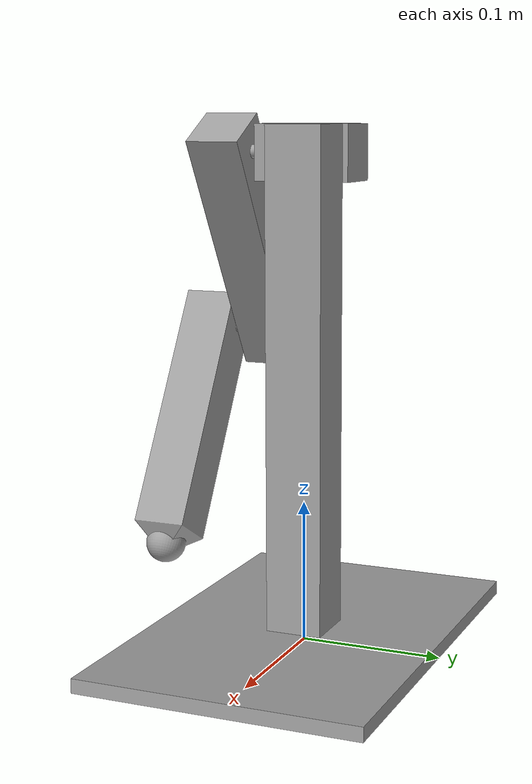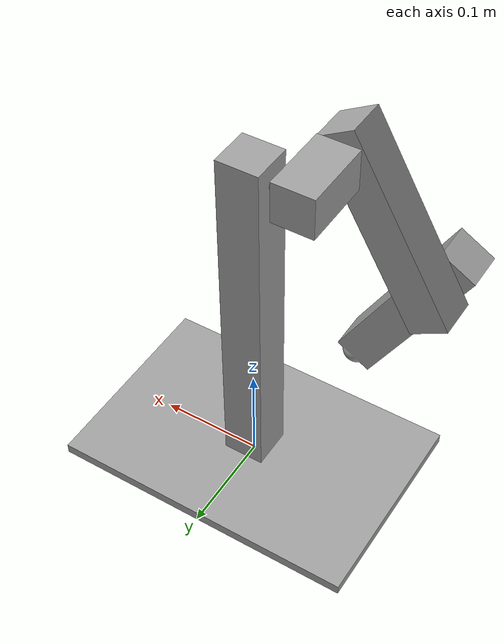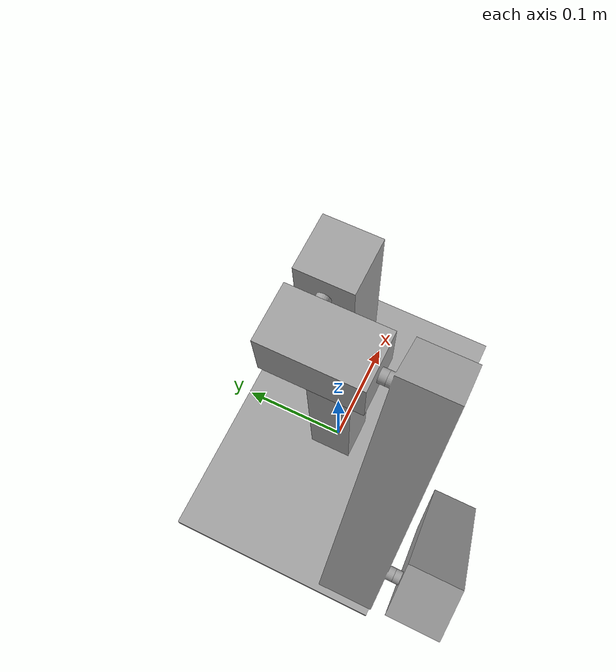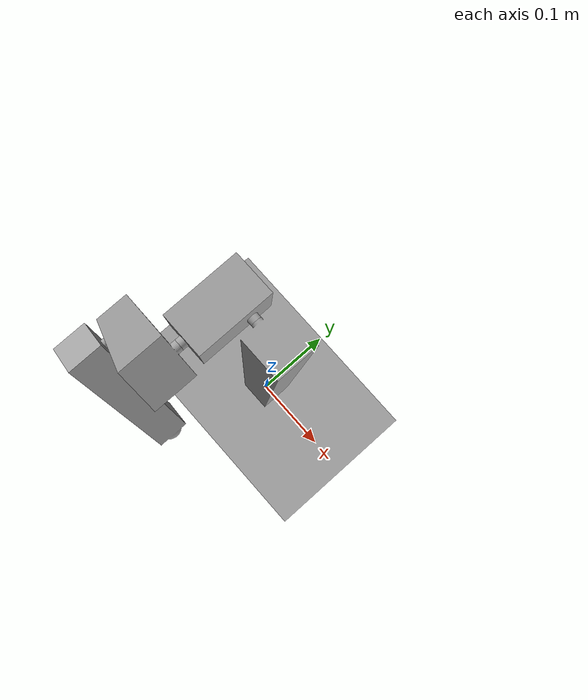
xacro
<?xml version="1.0" ?>
<robot name="leg" xmlns:xacro="http://www.ros.org/wiki/xacro">

<xacro:include filename="$(find leg_description)/urdf/materials.xacro" />
<xacro:include filename="$(find leg_description)/urdf/leg.trans" />
<xacro:include filename="$(find leg_description)/urdf/leg_ros2_control.xacro" />
<xacro:include filename="$(find leg_description)/urdf/leg_gazebo.xacro" />

<link name="world"/>

<link name="base_link">
  <inertial>
    <origin xyz="-7.614430309011421e-06 -1.5675636402963864e-16 0.09198051467597423" rpy="0 0 0"/>
    <mass value="9.109082687791332"/>
    <inertia ixx="0.135062" iyy="0.154688" izz="0.052199" ixy="-0.0" iyz="0.0" ixz="1.7e-05"/>
  </inertial>
  <visual>
    <origin xyz="0 0 0" rpy="0 0 0"/>
    <geometry>
      <mesh filename="package://leg_description/meshes/base_link.stl" scale="0.001 0.001 0.001"/>
    </geometry>
    <material name="steel_satin"/>
  </visual>
</link>

<joint name="virtual_joint" type="fixed">
  <parent link="world"/>
  <child link="base_link"/>
  <origin xyz="0 0 0" rpy="0 0 0"/>
  <axis xyz="0 0 0"/>
</joint>

<link name="link_1">
  <inertial>
    <origin xyz="-0.024921658924984068 -0.015078341075019548 -1.887379141862766e-15" rpy="0 0 0"/>
    <mass value="0.8853653755826697"/>
    <inertia ixx="0.000481" iyy="0.000236" izz="0.000483" ixy="-1e-06" iyz="-0.0" ixz="0.0"/>
  </inertial>
  <visual>
    <origin xyz="0.025 -0.0 -0.34" rpy="0 0 0"/>
    <geometry>
      <mesh filename="package://leg_description/meshes/link_1.stl" scale="0.001 0.001 0.001"/>
    </geometry>
    <material name="steel_satin"/>
  </visual>
  <collision>
    <origin xyz="0.025 -0.0 -0.34" rpy="0 0 0"/>
    <geometry>
      <mesh filename="package://leg_description/meshes/link_1.stl" scale="0.001 0.001 0.001"/>
    </geometry>
  </collision>
</link>

<link name="link_2">
  <inertial>
    <origin xyz="-0.039999999999999855 -0.025000000000000126 -0.06928203230275565" rpy="0 0 0"/>
    <mass value="2.51816537558267"/>
    <inertia ixx="0.006731" iyy="0.008748" izz="0.002693" ixy="-6e-06" iyz="-1e-05" ixz="-0.003498"/>
  </inertial>
  <visual>
    <origin xyz="0.05 0.055 -0.34" rpy="0 0 0"/>
    <geometry>
      <mesh filename="package://leg_description/meshes/link_2.stl" scale="0.001 0.001 0.001"/>
    </geometry>
    <material name="steel_satin"/>
  </visual>
  <collision>
    <origin xyz="0.05 0.055 -0.34" rpy="0 0 0"/>
    <geometry>
      <mesh filename="package://leg_description/meshes/link_2.stl" scale="0.001 0.001 0.001"/>
    </geometry>
  </collision>
</link>

<link name="link_3">
  <inertial>
    <origin xyz="0.040200358733573444 -0.024972506152453208 -0.06962912841455629" rpy="0 0 0"/>
    <mass value="2.5227635086829263"/>
    <inertia ixx="0.006838" iyy="0.008897" izz="0.002717" ixy="3e-06" iyz="-5e-06" ixz="0.003569"/>
  </inertial>
  <visual>
    <origin xyz="0.13 0.105 -0.201436" rpy="0 0 0"/>
    <geometry>
      <mesh filename="package://leg_description/meshes/link_3.stl" scale="0.001 0.001 0.001"/>
    </geometry>
    <material name="steel_satin"/>
  </visual>
  <collision>
    <origin xyz="0.13 0.105 -0.201436" rpy="0 0 0"/>
    <geometry>
      <mesh filename="package://leg_description/meshes/link_3.stl" scale="0.001 0.001 0.001"/>
    </geometry>
  </collision>
</link>

<joint name="base2link1" type="revolute">
  <origin xyz="-0.025 0.0 0.34" rpy="0 0 0"/>
  <parent link="base_link"/>
  <child link="link_1"/>
  <axis xyz="-1.0 0.0 0.0"/>
  <limit upper="0.261799" lower="-0.261799" effort="100" velocity="100"/>
</joint>

<joint name="link12link2" type="revolute">
  <origin xyz="-0.025 -0.055 0.0" rpy="0 0 0"/>
  <parent link="link_1"/>
  <child link="link_2"/>
  <axis xyz="0.0 -1.0 0.0"/>
  <limit upper="0.52359" lower="-0.52359" effort="100" velocity="100"/>
</joint>

<joint name="link22link3" type="revolute">
  <origin xyz="-0.08 -0.05 -0.138564" rpy="0 0 0"/>
  <parent link="link_2"/>
  <child link="link_3"/>
  <axis xyz="0.0 -1.0 0.0"/>
  <limit upper="1.0472" lower="-0.52359" effort="100" velocity="100"/>
</joint>

</robot>

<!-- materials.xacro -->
<robot name="leg" xmlns:xacro="http://www.ros.org/wiki/xacro" >

<material name="silver_default">
  <color rgba="0.700 0.700 0.700 1.000"/>
</material>
<material name="steel_satin">
  <color rgba="0.6274509803921569 0.6274509803921569 0.6274509803921569 1.0"/>
</material>

</robot>
